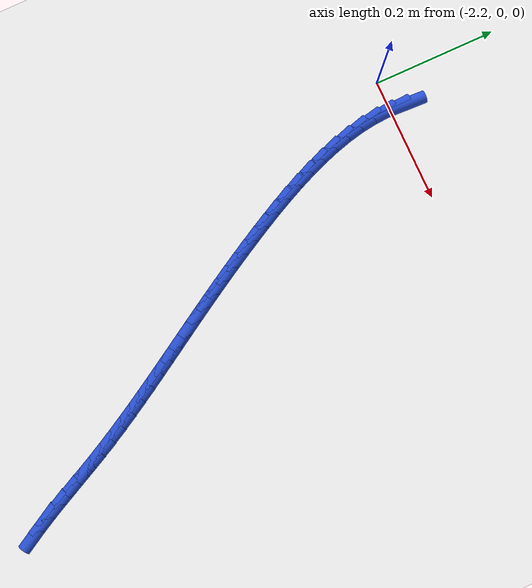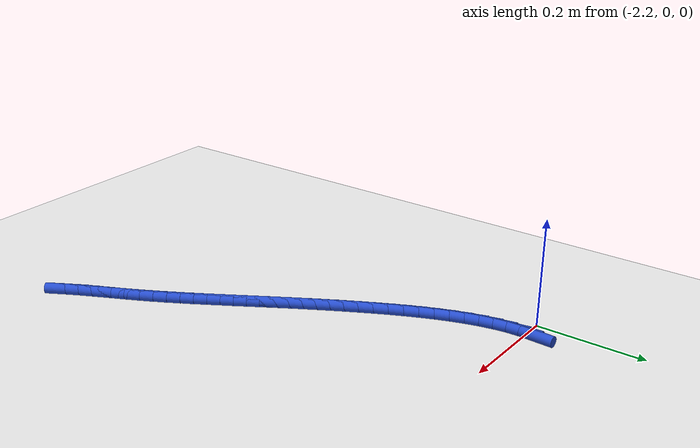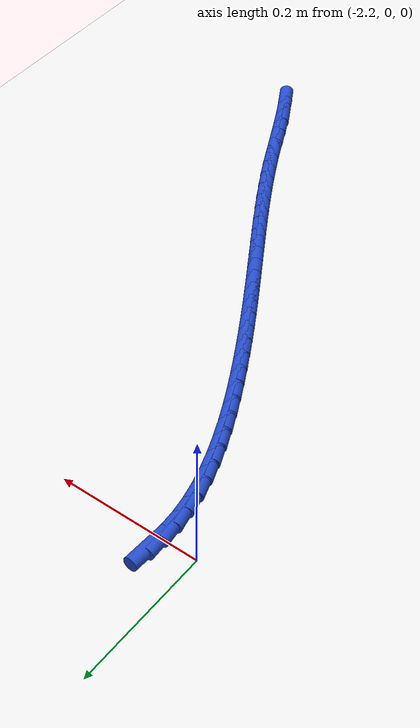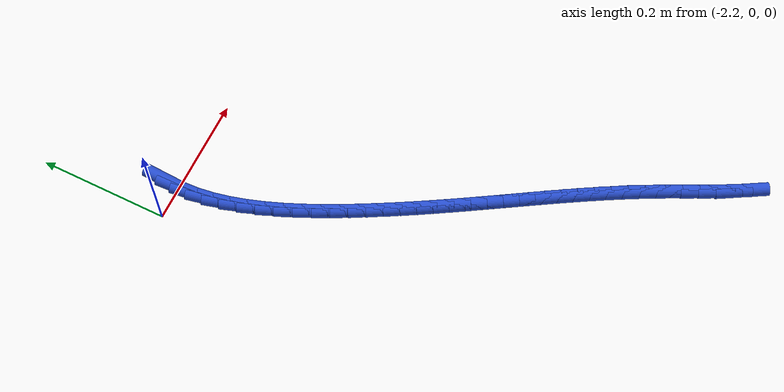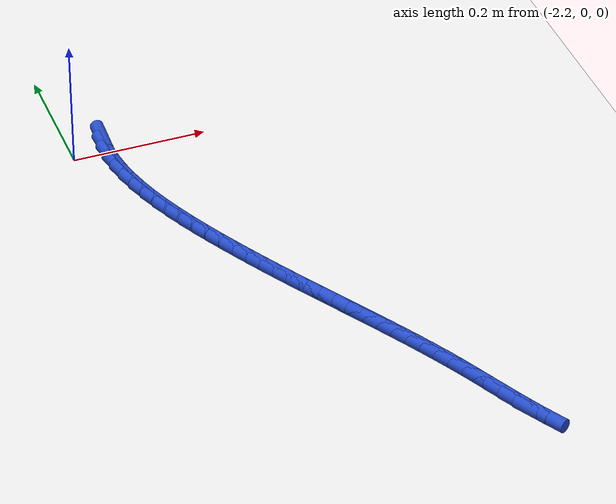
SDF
<sdf version="1.6">
 <world name="default">
  <model name="ground_plane">
   <static>1</static>
   <link name="link">
    <collision name="collision">
     <geometry><plane><normal>0 0 1</normal><size>100 100</size></plane></geometry>
     <surface><friction><ode><mu>100</mu><mu2>50</mu2></ode></friction></surface>
    </collision>
    <visual name="visual">
     <cast_shadows>0</cast_shadows>
     <geometry><plane><normal>0 0 1</normal><size>100 100</size></plane></geometry>
     <material>
      <script><uri>file://media/materials/scripts/gazebo.material</uri><name>Gazebo/WhiteGlow</name></script>
     </material>
    </visual>
   </link>
  </model>
  <model name="line">
   <link name="link_141">
    <pose>-2.14968726786818 0.016538480262454087 0.01 0 1.57 1.522822653599352</pose>
    <collision name="collision">
     <geometry><cylinder><radius>0.01</radius><length>0.08</length></cylinder></geometry>
    </collision>
    <visual name="visual">
     <material>
      <script><name>Gazebo/Blue</name><uri>file://media/materials/scripts/gazebo.material</uri></script>
     </material>
     <geometry><cylinder><radius>0.01</radius><length>0.08</length></cylinder></geometry>
    </visual>
   </link>
   <link name="link_142">
    <pose>-2.150808414280525 -0.006813623288141531 0.01 0 1.57 -1.5196946969599774</pose>
    <collision name="collision">
     <geometry><cylinder><radius>0.01</radius><length>0.08</length></cylinder></geometry>
    </collision>
    <visual name="visual">
     <material>
      <script><name>Gazebo/Blue</name><uri>file://media/materials/scripts/gazebo.material</uri></script>
     </material>
     <geometry><cylinder><radius>0.01</radius><length>0.08</length></cylinder></geometry>
    </visual>
   </link>
   <link name="link_143">
    <pose>-2.1495801476536096 -0.030828459784313263 0.01 0 1.57 -1.4349740430970608</pose>
    <collision name="collision">
     <geometry><cylinder><radius>0.01</radius><length>0.08</length></cylinder></geometry>
    </collision>
    <visual name="visual">
     <material>
      <script><name>Gazebo/Blue</name><uri>file://media/materials/scripts/gazebo.material</uri></script>
     </material>
     <geometry><cylinder><radius>0.01</radius><length>0.08</length></cylinder></geometry>
    </visual>
   </link>
   <link name="link_144">
    <pose>-2.1462256093630265 -0.05537439551398383 0.01 0 1.57 -1.363069596252724</pose>
    <collision name="collision">
     <geometry><cylinder><radius>0.01</radius><length>0.08</length></cylinder></geometry>
    </collision>
    <visual name="visual">
     <material>
      <script><name>Gazebo/Blue</name><uri>file://media/materials/scripts/gazebo.material</uri></script>
     </material>
     <geometry><cylinder><radius>0.01</radius><length>0.08</length></cylinder></geometry>
    </visual>
   </link>
   <link name="link_145">
    <pose>-2.1409679407843676 -0.08031979676507582 0.01 0 1.57 -1.3022819507650465</pose>
    <collision name="collision">
     <geometry><cylinder><radius>0.01</radius><length>0.08</length></cylinder></geometry>
    </collision>
    <visual name="visual">
     <material>
      <script><name>Gazebo/Blue</name><uri>file://media/materials/scripts/gazebo.material</uri></script>
     </material>
     <geometry><cylinder><radius>0.01</radius><length>0.08</length></cylinder></geometry>
    </visual>
   </link>
   <link name="link_146">
    <pose>-2.134030283293224 -0.10553302982551263 0.01 0 1.57 -1.2510106037756563</pose>
    <collision name="collision">
     <geometry><cylinder><radius>0.01</radius><length>0.08</length></cylinder></geometry>
    </collision>
    <visual name="visual">
     <material>
      <script><name>Gazebo/Blue</name><uri>file://media/materials/scripts/gazebo.material</uri></script>
     </material>
     <geometry><cylinder><radius>0.01</radius><length>0.08</length></cylinder></geometry>
    </visual>
   </link>
   <link name="link_147">
    <pose>-2.12563577826519 -0.13088246098321535 0.01 0 1.57 -1.20786670831634</pose>
    <collision name="collision">
     <geometry><cylinder><radius>0.01</radius><length>0.08</length></cylinder></geometry>
    </collision>
    <visual name="visual">
     <material>
      <script><name>Gazebo/Blue</name><uri>file://media/materials/scripts/gazebo.material</uri></script>
     </material>
     <geometry><cylinder><radius>0.01</radius><length>0.08</length></cylinder></geometry>
    </visual>
   </link>
   <link name="link_148">
    <pose>-2.1160075670758567 -0.15623645652610732 0.01 0 1.57 -1.1717045661947854</pose>
    <collision name="collision">
     <geometry><cylinder><radius>0.01</radius><length>0.08</length></cylinder></geometry>
    </collision>
    <visual name="visual">
     <material>
      <script><name>Gazebo/Blue</name><uri>file://media/materials/scripts/gazebo.material</uri></script>
     </material>
     <geometry><cylinder><radius>0.01</radius><length>0.08</length></cylinder></geometry>
    </visual>
   </link>
   <link name="link_149">
    <pose>-2.105368791100817 -0.1814633827421112 0.01 0 1.57 -1.1416157207493156</pose>
    <collision name="collision">
     <geometry><cylinder><radius>0.01</radius><length>0.08</length></cylinder></geometry>
    </collision>
    <visual name="visual">
     <material>
      <script><name>Gazebo/Blue</name><uri>file://media/materials/scripts/gazebo.material</uri></script>
     </material>
     <geometry><cylinder><radius>0.01</radius><length>0.08</length></cylinder></geometry>
    </visual>
   </link>
   <link name="link_150">
    <pose>-2.093942591715664 -0.2064316059191497 0.01 0 1.57 -1.1169106342410051</pose>
    <collision name="collision">
     <geometry><cylinder><radius>0.01</radius><length>0.08</length></cylinder></geometry>
    </collision>
    <visual name="visual">
     <material>
      <script><name>Gazebo/Blue</name><uri>file://media/materials/scripts/gazebo.material</uri></script>
     </material>
     <geometry><cylinder><radius>0.01</radius><length>0.08</length></cylinder></geometry>
    </visual>
   </link>
   <link name="link_151">
    <pose>-2.0819521102959877 -0.23100949234514526 0.01 0 1.57 -1.0971011821757872</pose>
    <collision name="collision">
     <geometry><cylinder><radius>0.01</radius><length>0.08</length></cylinder></geometry>
    </collision>
    <visual name="visual">
     <material>
      <script><name>Gazebo/Blue</name><uri>file://media/materials/scripts/gazebo.material</uri></script>
     </material>
     <geometry><cylinder><radius>0.01</radius><length>0.08</length></cylinder></geometry>
    </visual>
   </link>
   <link name="link_152">
    <pose>-2.0696204882173825 -0.2550654083080206 0.01 0 1.57 -1.081886813705168</pose>
    <collision name="collision">
     <geometry><cylinder><radius>0.01</radius><length>0.08</length></cylinder></geometry>
    </collision>
    <visual name="visual">
     <material>
      <script><name>Gazebo/Blue</name><uri>file://media/materials/scripts/gazebo.material</uri></script>
     </material>
     <geometry><cylinder><radius>0.01</radius><length>0.08</length></cylinder></geometry>
    </visual>
   </link>
   <link name="link_153">
    <pose>-2.057170591908837 -0.27846798694206937 0.01 0 1.57 -1.0701358099394909</pose>
    <collision name="collision">
     <geometry><cylinder><radius>0.01</radius><length>0.08</length></cylinder></geometry>
    </collision>
    <visual name="visual">
     <material>
      <script><name>Gazebo/Blue</name><uri>file://media/materials/scripts/gazebo.material</uri></script>
     </material>
     <geometry><cylinder><radius>0.01</radius><length>0.08</length></cylinder></geometry>
    </visual>
   </link>
   <link name="link_154">
    <pose>-2.0447606721130294 -0.3011485734181636 0.01 0 1.57 -1.0595959691588248</pose>
    <collision name="collision">
     <geometry><cylinder><radius>0.01</radius><length>0.08</length></cylinder></geometry>
    </collision>
    <visual name="visual">
     <material>
      <script><name>Gazebo/Blue</name><uri>file://media/materials/scripts/gazebo.material</uri></script>
     </material>
     <geometry><cylinder><radius>0.01</radius><length>0.08</length></cylinder></geometry>
    </visual>
   </link>
   <link name="link_155">
    <pose>-2.0324015749951663 -0.32318157478242227 0.01 0 1.57 -1.0501149425445497</pose>
    <collision name="collision">
     <geometry><cylinder><radius>0.01</radius><length>0.08</length></cylinder></geometry>
    </collision>
    <visual name="visual">
     <material>
      <script><name>Gazebo/Blue</name><uri>file://media/materials/scripts/gazebo.material</uri></script>
     </material>
     <geometry><cylinder><radius>0.01</radius><length>0.08</length></cylinder></geometry>
    </visual>
   </link>
   <link name="link_156">
    <pose>-2.0200836901652313 -0.3446612519633998 0.01 0 1.57 -1.0418612827472273</pose>
    <collision name="collision">
     <geometry><cylinder><radius>0.01</radius><length>0.08</length></cylinder></geometry>
    </collision>
    <visual name="visual">
     <material>
      <script><name>Gazebo/Blue</name><uri>file://media/materials/scripts/gazebo.material</uri></script>
     </material>
     <geometry><cylinder><radius>0.01</radius><length>0.08</length></cylinder></geometry>
    </visual>
   </link>
   <link name="link_157">
    <pose>-2.007797407233205 -0.3656818658896527 0.01 0 1.57 -1.034988550583008</pose>
    <collision name="collision">
     <geometry><cylinder><radius>0.01</radius><length>0.08</length></cylinder></geometry>
    </collision>
    <visual name="visual">
     <material>
      <script><name>Gazebo/Blue</name><uri>file://media/materials/scripts/gazebo.material</uri></script>
     </material>
     <geometry><cylinder><radius>0.01</radius><length>0.08</length></cylinder></geometry>
    </visual>
   </link>
   <link name="link_158">
    <pose>-1.9955331158090683 -0.3863376774897364 0.01 0 1.57 -1.0296287781598787</pose>
    <collision name="collision">
     <geometry><cylinder><radius>0.01</radius><length>0.08</length></cylinder></geometry>
    </collision>
    <visual name="visual">
     <material>
      <script><name>Gazebo/Blue</name><uri>file://media/materials/scripts/gazebo.material</uri></script>
     </material>
     <geometry><cylinder><radius>0.01</radius><length>0.08</length></cylinder></geometry>
    </visual>
   </link>
   <link name="link_159">
    <pose>-1.983281205502803 -0.4067229476922068 0.01 0 1.57 -1.0258865594281756</pose>
    <collision name="collision">
     <geometry><cylinder><radius>0.01</radius><length>0.08</length></cylinder></geometry>
    </collision>
    <visual name="visual">
     <material>
      <script><name>Gazebo/Blue</name><uri>file://media/materials/scripts/gazebo.material</uri></script>
     </material>
     <geometry><cylinder><radius>0.01</radius><length>0.08</length></cylinder></geometry>
    </visual>
   </link>
   <link name="link_160">
    <pose>-1.971032065924391 -0.4269319374256193 0.01 0 1.57 -1.0238342169785195</pose>
    <collision name="collision">
     <geometry><cylinder><radius>0.01</radius><length>0.08</length></cylinder></geometry>
    </collision>
    <visual name="visual">
     <material>
      <script><name>Gazebo/Blue</name><uri>file://media/materials/scripts/gazebo.material</uri></script>
     </material>
     <geometry><cylinder><radius>0.01</radius><length>0.08</length></cylinder></geometry>
    </visual>
   </link>
   <link name="link_161">
    <pose>-1.9587760866838122 -0.4470589076185298 0.01 0 1.57 -1.0235084250388609</pose>
    <collision name="collision">
     <geometry><cylinder><radius>0.01</radius><length>0.08</length></cylinder></geometry>
    </collision>
    <visual name="visual">
     <material>
      <script><name>Gazebo/Blue</name><uri>file://media/materials/scripts/gazebo.material</uri></script>
     </material>
     <geometry><cylinder><radius>0.01</radius><length>0.08</length></cylinder></geometry>
    </visual>
   </link>
   <link name="link_162">
    <pose>-1.9465036573910497 -0.46719811919949383 0.01 0 1.57 -1.0249645237007776</pose>
    <collision name="collision">
     <geometry><cylinder><radius>0.01</radius><length>0.08</length></cylinder></geometry>
    </collision>
    <visual name="visual">
     <material>
      <script><name>Gazebo/Blue</name><uri>file://media/materials/scripts/gazebo.material</uri></script>
     </material>
     <geometry><cylinder><radius>0.01</radius><length>0.08</length></cylinder></geometry>
    </visual>
   </link>
   <link name="link_163">
    <pose>-1.9342105263842497 -0.4874375642878055 0.01 0 1.57 -1.0284517059037335</pose>
    <collision name="collision">
     <geometry><cylinder><radius>0.01</radius><length>0.08</length></cylinder></geometry>
    </collision>
    <visual name="visual">
     <material>
      <script><name>Gazebo/Blue</name><uri>file://media/materials/scripts/gazebo.material</uri></script>
     </material>
     <geometry><cylinder><radius>0.01</radius><length>0.08</length></cylinder></geometry>
    </visual>
   </link>
   <link name="link_164">
    <pose>-1.9219193440776783 -0.5078337641054218 0.01 0 1.57 -1.0340117674988227</pose>
    <collision name="collision">
     <geometry><cylinder><radius>0.01</radius><length>0.08</length></cylinder></geometry>
    </collision>
    <visual name="visual">
     <material>
      <script><name>Gazebo/Blue</name><uri>file://media/materials/scripts/gazebo.material</uri></script>
     </material>
     <geometry><cylinder><radius>0.01</radius><length>0.08</length></cylinder></geometry>
    </visual>
   </link>
   <link name="link_165">
    <pose>-1.909661184861802 -0.5284333852411863 0.01 0 1.57 -1.041587142253167</pose>
    <collision name="collision">
     <geometry><cylinder><radius>0.01</radius><length>0.08</length></cylinder></geometry>
    </collision>
    <visual name="visual">
     <material>
      <script><name>Gazebo/Blue</name><uri>file://media/materials/scripts/gazebo.material</uri></script>
     </material>
     <geometry><cylinder><radius>0.01</radius><length>0.08</length></cylinder></geometry>
    </visual>
   </link>
   <link name="link_166">
    <pose>-1.8974671260431428 -0.5492830908726494 0.01 0 1.57 -1.051108749370066</pose>
    <collision name="collision">
     <geometry><cylinder><radius>0.01</radius><length>0.08</length></cylinder></geometry>
    </collision>
    <visual name="visual">
     <material>
      <script><name>Gazebo/Blue</name><uri>file://media/materials/scripts/gazebo.material</uri></script>
     </material>
     <geometry><cylinder><radius>0.01</radius><length>0.08</length></cylinder></geometry>
    </visual>
   </link>
   <link name="link_167">
    <pose>-1.8853682449282225 -0.5704295441773605 0.01 0 1.57 -1.06249629152436</pose>
    <collision name="collision">
     <geometry><cylinder><radius>0.01</radius><length>0.08</length></cylinder></geometry>
    </collision>
    <visual name="visual">
     <material>
      <script><name>Gazebo/Blue</name><uri>file://media/materials/scripts/gazebo.material</uri></script>
     </material>
     <geometry><cylinder><radius>0.01</radius><length>0.08</length></cylinder></geometry>
    </visual>
   </link>
   <link name="link_168">
    <pose>-1.873395618823563 -0.5919194083328689 0.01 0 1.57 -1.0756585634076428</pose>
    <collision name="collision">
     <geometry><cylinder><radius>0.01</radius><length>0.08</length></cylinder></geometry>
    </collision>
    <visual name="visual">
     <material>
      <script><name>Gazebo/Blue</name><uri>file://media/materials/scripts/gazebo.material</uri></script>
     </material>
     <geometry><cylinder><radius>0.01</radius><length>0.08</length></cylinder></geometry>
    </visual>
   </link>
   <link name="link_169">
    <pose>-1.8615803250356884 -0.6137993465167249 0.01 0 1.57 -1.090493858571622</pose>
    <collision name="collision">
     <geometry><cylinder><radius>0.01</radius><length>0.08</length></cylinder></geometry>
    </collision>
    <visual name="visual">
     <material>
      <script><name>Gazebo/Blue</name><uri>file://media/materials/scripts/gazebo.material</uri></script>
     </material>
     <geometry><cylinder><radius>0.01</radius><length>0.08</length></cylinder></geometry>
    </visual>
   </link>
   <link name="link_170">
    <pose>-1.849953440871119 -0.6361160219064774 0.01 0 1.57 -1.1056478750292063</pose>
    <collision name="collision">
     <geometry><cylinder><radius>0.01</radius><length>0.08</length></cylinder></geometry>
    </collision>
    <visual name="visual">
     <material>
      <script><name>Gazebo/Blue</name><uri>file://media/materials/scripts/gazebo.material</uri></script>
     </material>
     <geometry><cylinder><radius>0.01</radius><length>0.08</length></cylinder></geometry>
    </visual>
   </link>
   <link name="link_171">
    <pose>-1.8385258938650682 -0.6588856177368162 0.01 0 1.57 -1.1137890146685288</pose>
    <collision name="collision">
     <geometry><cylinder><radius>0.01</radius><length>0.08</length></cylinder></geometry>
    </collision>
    <visual name="visual">
     <material>
      <script><name>Gazebo/Blue</name><uri>file://media/materials/scripts/gazebo.material</uri></script>
     </material>
     <geometry><cylinder><radius>0.01</radius><length>0.08</length></cylinder></geometry>
    </visual>
   </link>
   <link name="link_172">
    <pose>-1.8271882934837584 -0.6819423157789041 0.01 0 1.57 -1.1124883769183893</pose>
    <collision name="collision">
     <geometry><cylinder><radius>0.01</radius><length>0.08</length></cylinder></geometry>
    </collision>
    <visual name="visual">
     <material>
      <script><name>Gazebo/Blue</name><uri>file://media/materials/scripts/gazebo.material</uri></script>
     </material>
     <geometry><cylinder><radius>0.01</radius><length>0.08</length></cylinder></geometry>
    </visual>
   </link>
   <link name="link_173">
    <pose>-1.8157867805511234 -0.7050530314486106 0.01 0 1.57 -1.1018050328873352</pose>
    <collision name="collision">
     <geometry><cylinder><radius>0.01</radius><length>0.08</length></cylinder></geometry>
    </collision>
    <visual name="visual">
     <material>
      <script><name>Gazebo/Blue</name><uri>file://media/materials/scripts/gazebo.material</uri></script>
     </material>
     <geometry><cylinder><radius>0.01</radius><length>0.08</length></cylinder></geometry>
    </visual>
   </link>
   <link name="link_174">
    <pose>-1.8041674246199895 -0.7279845723521752 0.01 0 1.57 -1.0814994530771043</pose>
    <collision name="collision">
     <geometry><cylinder><radius>0.01</radius><length>0.08</length></cylinder></geometry>
    </collision>
    <visual name="visual">
     <material>
      <script><name>Gazebo/Blue</name><uri>file://media/materials/scripts/gazebo.material</uri></script>
     </material>
     <geometry><cylinder><radius>0.01</radius><length>0.08</length></cylinder></geometry>
    </visual>
   </link>
   <link name="link_175">
    <pose>-1.792176295243181 -0.7505037460958395 0.01 0 1.57 -1.0510429947416349</pose>
    <collision name="collision">
     <geometry><cylinder><radius>0.01</radius><length>0.08</length></cylinder></geometry>
    </collision>
    <visual name="visual">
     <material>
      <script><name>Gazebo/Blue</name><uri>file://media/materials/scripts/gazebo.material</uri></script>
     </material>
     <geometry><cylinder><radius>0.01</radius><length>0.08</length></cylinder></geometry>
    </visual>
   </link>
  </model>
 </world>
</sdf>
